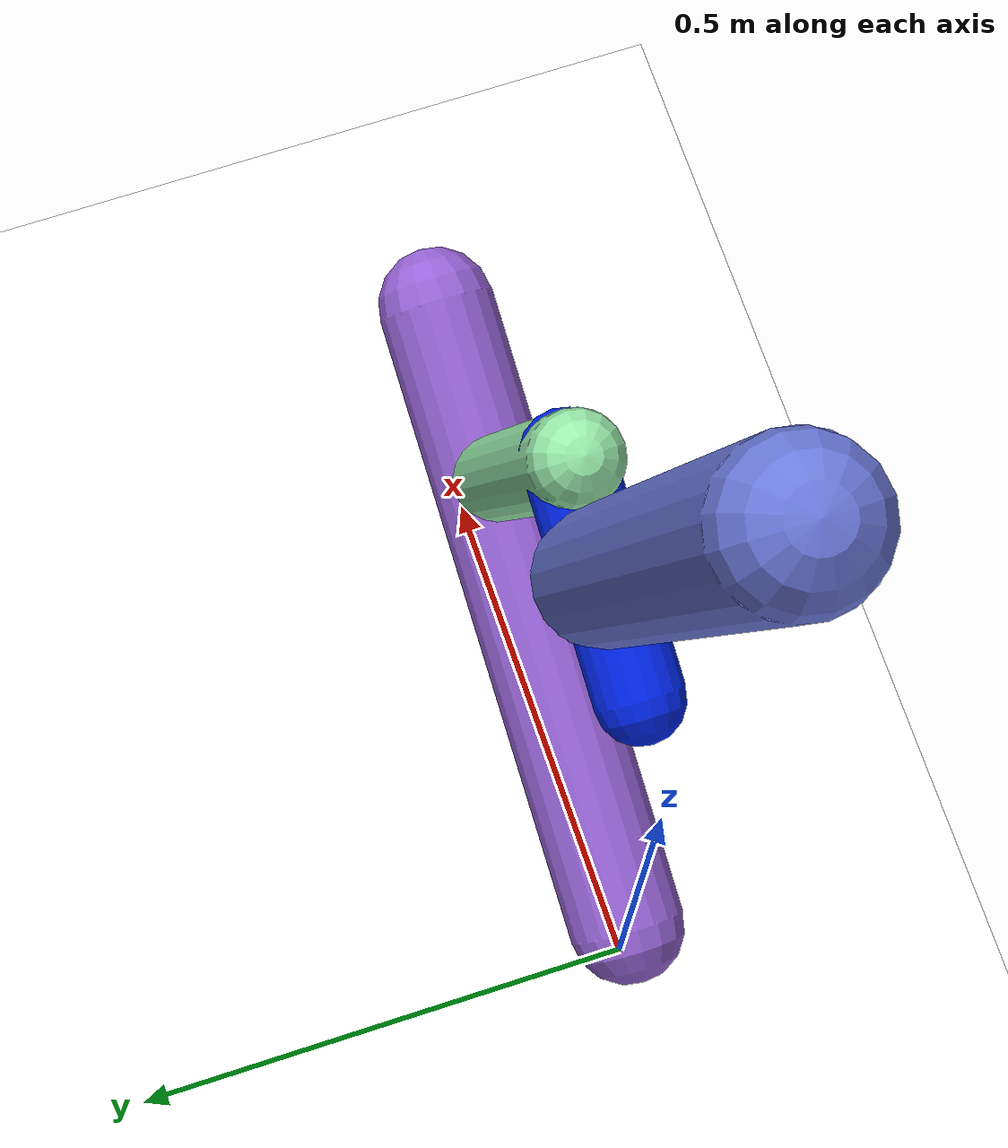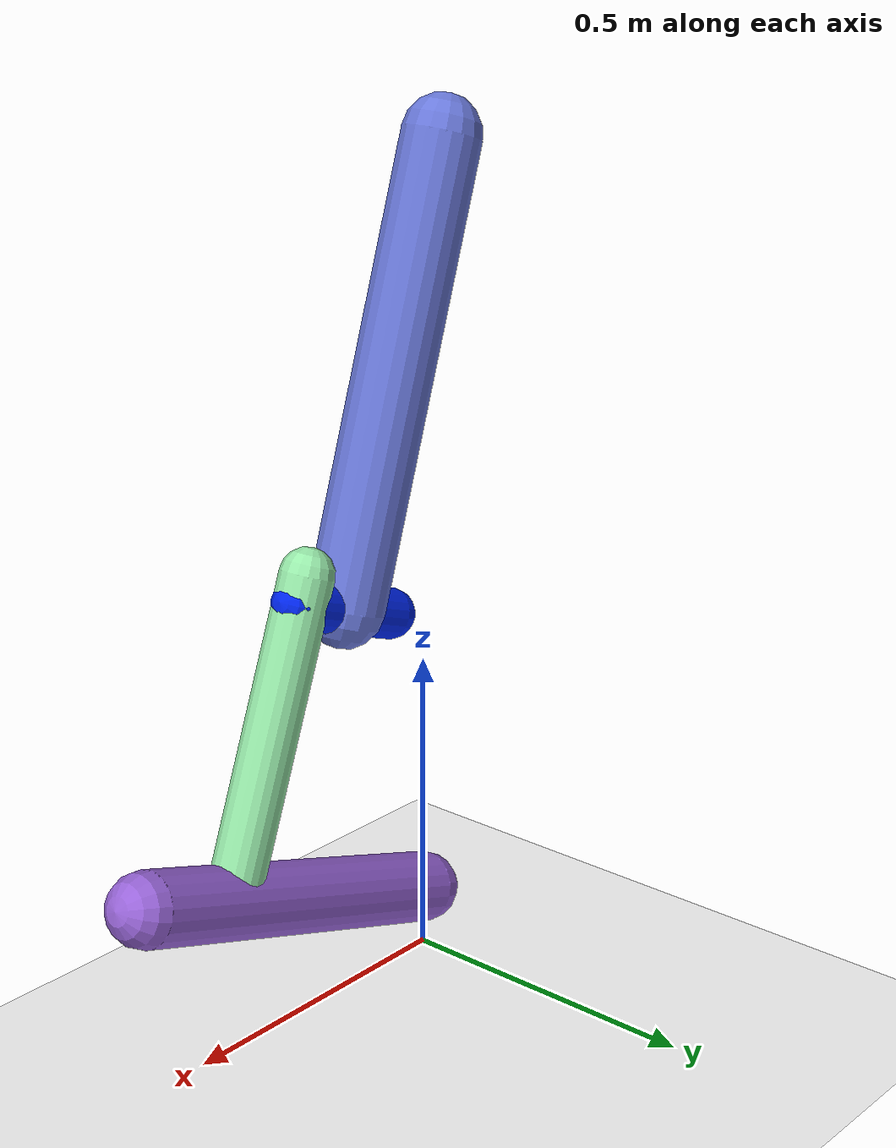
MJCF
<mujoco model="morphology">
  <option timestep="0.01"/>
  <default>
    <default class="/"/>
  </default>
  <asset>
    <texture name="texplane" type="2d" builtin="checker" rgb1="0.1 0.2 0.3" rgb2="0.2 0.3 0.4" width="300" height="300"/>
    <material name="MatPlane" class="/" texture="texplane" texrepeat="20 20" specular="1" shininess="1" reflectance="0.5"/>
  </asset>
  <worldbody>
    <light name="//unnamed_light_0" class="/" directional="true" pos="0 0 1.5" dir="0 0 -1.3" cutoff="1e+02" exponent="1" diffuse="1 1 1" specular="0.1 0.1 0.1"/>
    <geom name="ground" class="/" type="plane" size="15 15 0.5" material="MatPlane" rgba="1 1 1 1"/>
    <body name="body" pos="0 0 0.1">
      <geom name="geom0" class="/" type="capsule" contype="1" conaffinity="1" condim="3" size="0.057" rgba="0.59 0.39 0.84 1" friction="0.4 0.1 0.1" fromto="0 0 0 0.6 0 0.2"/>
      <body name="body1" pos="0.43 0 0.15">
        <geom name="geom1" class="/" type="capsule" contype="1" conaffinity="1" condim="3" size="0.042" rgba="0.59 0.91 0.66 1" friction="0.4 0.1 0.1" fromto="0 0 0 -0.17 0 0.46"/>
        <body name="body2" pos="-0.15 0 0.42">
          <geom name="geom2" class="/" type="capsule" contype="1" conaffinity="1" condim="3" size="0.04" rgba="0.0016 0.15 0.93 1" friction="0.4 0.1 0.1" fromto="0 0 0 -0.2 0 -0.07"/>
          <body name="body3" pos="-0.1 0 -0.035">
            <geom name="geom3" class="/" type="capsule" contype="1" conaffinity="1" condim="3" size="0.061" rgba="0.41 0.47 0.85 1" friction="0.4 0.1 0.1" fromto="0 0 0 -0.22 0 0.68"/>
            <joint name="joint3" class="/" type="hinge" axis="0 1 0" limited="true" stiffness="20" range="-55 55" armature="0.1" damping="2"/>
          </body>
          <joint name="joint2" class="/" type="hinge" axis="0 1 0" limited="true" stiffness="20" range="-36 36" armature="0.1" damping="2"/>
        </body>
        <joint name="joint1" class="/" type="hinge" axis="0 1 0" limited="true" stiffness="20" range="-69 69" armature="0.1" damping="2"/>
      </body>
      <joint name="rootx" class="/" type="slide" axis="1 0 0" limited="false" stiffness="0" armature="0" damping="0"/>
      <joint name="rootz" class="/" type="slide" axis="0 0 1" limited="false" stiffness="0" armature="0" damping="0"/>
      <joint name="rooty" class="/" type="hinge" axis="0 1 0" limited="false" stiffness="0" armature="0" damping="0"/>
    </body>
  </worldbody>
  <actuator>
    <motor name="motor3" class="/" ctrllimited="true" ctrlrange="-1 1" gear="1.2e+02" joint="joint3"/>
    <motor name="motor2" class="/" ctrllimited="true" ctrlrange="-1 1" gear="1.8e+02" joint="joint2"/>
    <motor name="motor1" class="/" ctrllimited="true" ctrlrange="-1 1" gear="1.3e+02" joint="joint1"/>
  </actuator>
  <sensor>
    <subtreelinvel name="velocity" body="body"/>
  </sensor>
</mujoco>
